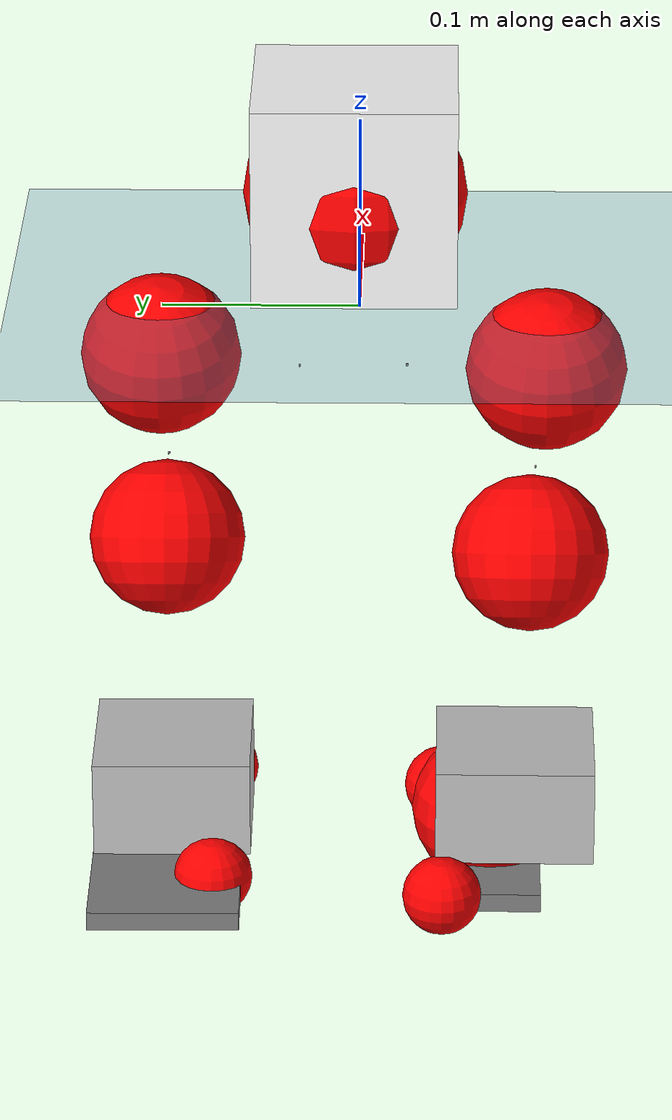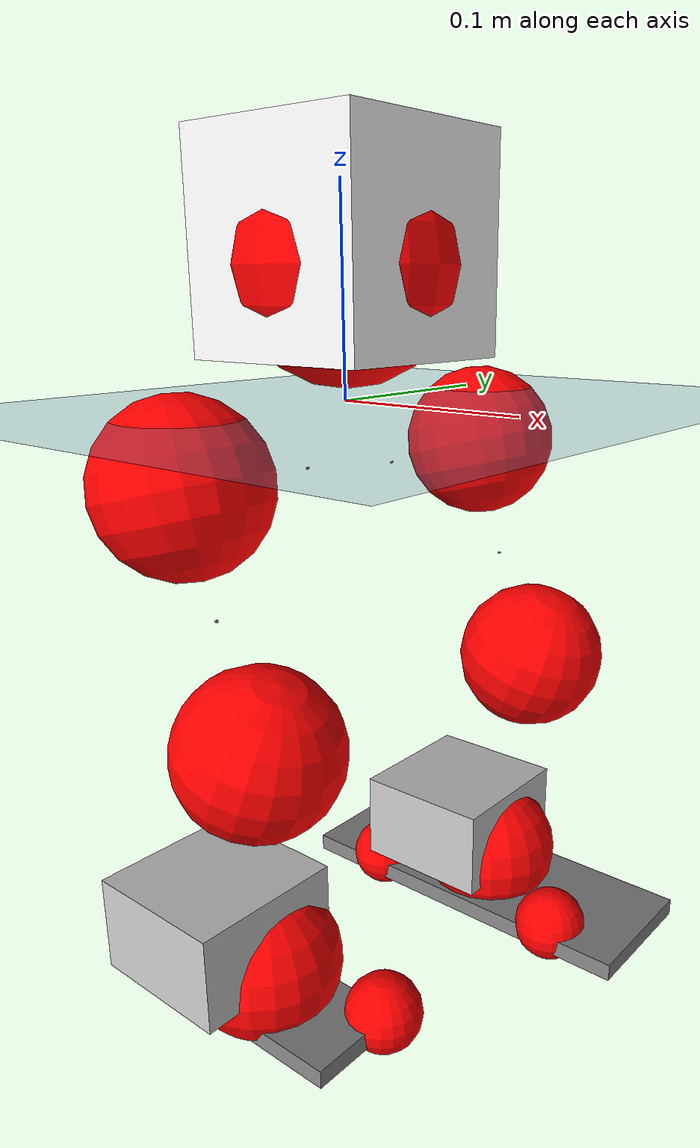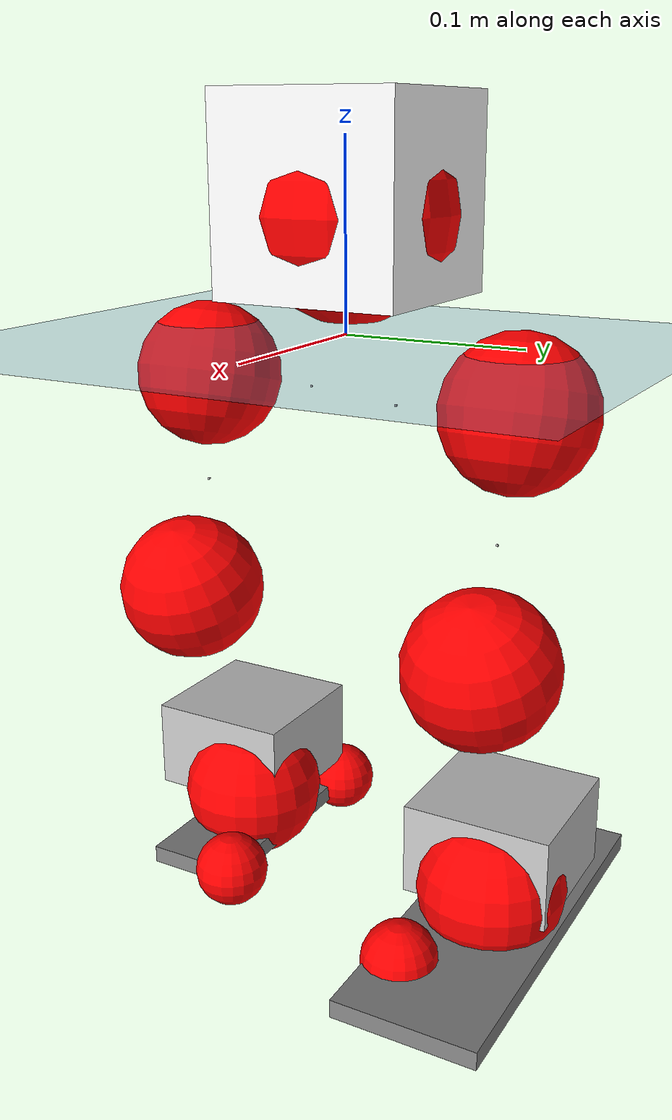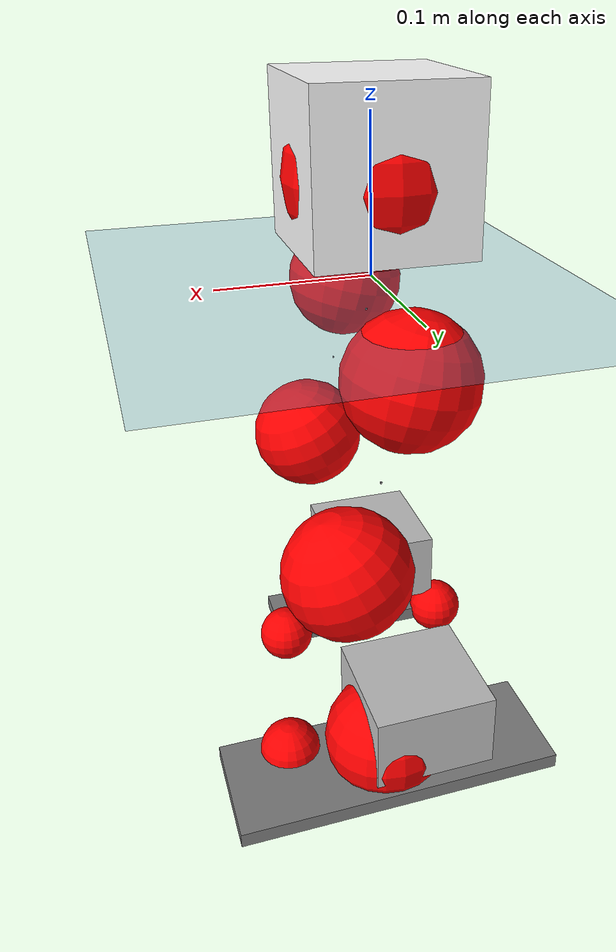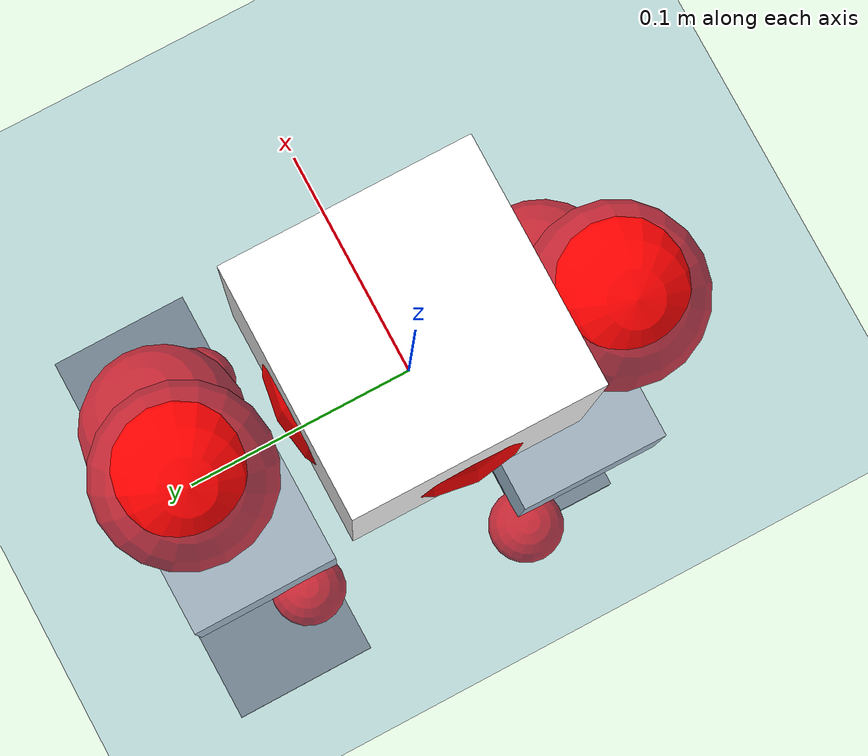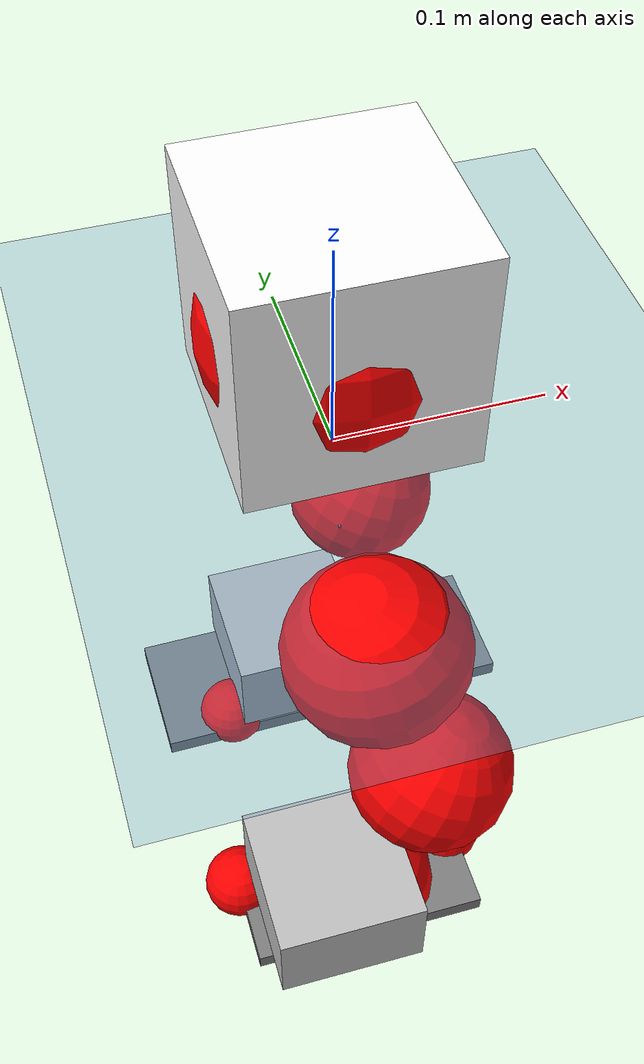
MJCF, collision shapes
<mujoco model="pi_12dof_release_v1">
  <compiler angle="radian" assetdir="assets" balanceinertia="true" inertiafromgeom="false"/>

  <option timestep="0.005" density="1.2" viscosity="2e-05"/>

  <size nkey="1"/>

  <visual>
    <quality shadowsize="8192"/>
    <map shadowclip="0.5"/>
  </visual>

  <default>
    <default class="/">
      <joint armature="0.01" damping="0.01" frictionloss="0.01"/>
      <geom contype="0" conaffinity="0" group="1" solref="-1000 -80"/>
      <site size="0.01 0.005 0.005" group="5"/>
      <general forcelimited="true" biastype="affine" gainprm="20" biasprm="0 -20 -0.5"/>
      <default class="foot">
        <geom size="0.0845 0.036 0.005" type="box" condim="6" group="4" priority="1" friction="0.9 0.2 0.2" solimp="0.015 1 0.005"/>
      </default>
      <default class="reward_collision_sphere">
        <geom group="5" rgba="1 0 0 1"/>
      </default>
    </default>
  </default>

  <asset>
    <texture type="skybox" colorspace="auto" name="//unnamed_texture_0" builtin="gradient" rgb1="0.95 0.95 0.95" rgb2="0.95 0.95 0.95" width="100" height="600"/>
    <texture type="2d" colorspace="auto" name="texplane" builtin="checker" rgb1="0.345 0.575 0.748" rgb2="0.345 0.575 0.748" markrgb="1 1 1" width="512" height="512"/>
    <material name="MatPlane" class="/" texture="texplane" texuniform="true" texrepeat="2 2" specular="0.9"/>
    <mesh name="baselink_1" class="/" file="baselink_1.STL"/>
    <mesh name="r_hip_pitch_link" class="/" file="r_hip_pitch_link.STL"/>
    <mesh name="r_hip_roll_link" class="/" file="r_hip_roll_link.STL"/>
    <mesh name="r_thigh_link" class="/" file="r_thigh_link.STL"/>
    <mesh name="r_calf_link" class="/" file="r_calf_link.STL"/>
    <mesh name="r_ankle_pitch_link" class="/" file="r_ankle_pitch_link.STL"/>
    <mesh name="r_ankle_roll_link" class="/" file="r_ankle_roll_link.STL"/>
    <mesh name="l_hip_pitch_link" class="/" file="l_hip_pitch_link.STL"/>
    <mesh name="l_hip_roll_link" class="/" file="l_hip_roll_link.STL"/>
    <mesh name="l_thigh_link" class="/" file="l_thigh_link.STL"/>
    <mesh name="l_calf_link" class="/" file="l_calf_link.STL"/>
    <mesh name="l_ankle_pitch_link" class="/" file="l_ankle_pitch_link.STL"/>
    <mesh name="l_ankle_roll_link" class="/" file="l_ankle_roll_link.STL"/>
  </asset>

  <worldbody>
    <geom name="floor" class="/" size="100 100 0.125" type="plane" group="0" material="MatPlane"/>
    <light name="toplight_shadow" class="/" pos="0 0 5" dir="0.0990148 0.0990148 -0.990148" type="directional" ambient="0.04 0.04 0.04" diffuse="0.55 0.55 0.55" specular="0.12 0.12 0.12"/>
    <light name="toplight_fill" class="/" pos="0 0 5" dir="0.0990148 0.0990148 -0.990148" type="directional" castshadow="false" ambient="0.04 0.04 0.04" diffuse="0.3 0.3 0.3" specular="0.08 0.08 0.08"/>
    <body name="trunk" pos="-0.000625703 0.00239494 -0.00123368" quat="0.999999 -0.000724406 -0.000821192 -0.000549549">
      <inertial pos="0.00366781 0.00670016 0.0336223" quat="0.697694 0.0139881 0.00793776 0.716215" mass="2.38782" diaginertia="0.00807631 0.0280372 0.0025065"/>
      <joint name="//unnamed_joint_0" type="free"/>
      <geom name="//unnamed_geom_1" class="/" type="mesh" density="0" rgba="1 1 1 1" mesh="baselink_1"/>
      <geom name="//unnamed_geom_2" class="/" size="0.0511008 0.0511008 0.0511008" pos="0 0 0.0719099" type="box" rgba="1 1 1 1"/>
      <geom name="//unnamed_geom_3" class="reward_collision_sphere" size="0.0562108" pos="0 0 0.0629212"/>
      <site name="imu" class="/" pos="-0.0109267 0.00899491 0.00894839" size="0.0102202"/>
      <camera name="track" class="/" pos="0 -2.47188 0" quat="0.707107 0.707107 0 0" mode="trackcom"/>
      <camera name="ego_camera" class="/" pos="0.0698424 0 0.161797" quat="-0.5 -0.5 0.5 0.5"/>
      <body name="r_hip_pitch_link" pos="-0.00303616 -0.0261561 -0.0290311" quat="0.992175 -0.000431077 -0.124857 -0.000110911">
        <inertial pos="0.00178907 -0.0641665 0.00362605" quat="-0.0464833 0.703214 -0.0592133 0.706982" mass="0.410427" diaginertia="7.60786e-05 0.00029078 4.89534e-05"/>
        <joint name="r_hip_pitch_joint" class="/" pos="0 0 0" axis="0.00826762 -0.999861 0.0144526" stiffness="0.00294928" range="-1.78559 1.22358" armature="0.00910694" damping="0" frictionloss="0.00705578"/>
        <geom name="//unnamed_geom_4" class="/" type="mesh" density="0" rgba="0.75294 0.75294 0.75294 1" mesh="r_hip_pitch_link"/>
        <geom name="//unnamed_geom_5" class="/" size="0.000511008 0.000511008 0.000511008" type="box" rgba="0.75294 0.75294 0.75294 1"/>
        <body name="r_hip_roll_link" pos="-0.00504691 -0.0705354 0.00130917" quat="0.999993 0.00176839 0.000194833 -0.00335232">
          <inertial pos="0.00191926 -0.00819386 -0.0585507" quat="0.705907 -0.0807693 -0.0835397 0.698708" mass="0.411014" diaginertia="0.000249986 0.000734418 7.54684e-05"/>
          <joint name="r_hip_roll_joint" class="/" pos="0 0 0" axis="-0.999992 -0.00165355 -0.00369734" stiffness="0.00718039" range="-0.115069 0.464006" armature="0.00805641" damping="0" frictionloss="0.00910783"/>
          <geom name="//unnamed_geom_6" class="/" type="mesh" density="0" rgba="0.75294 0.75294 0.75294 1" mesh="r_hip_roll_link"/>
          <geom name="//unnamed_geom_7" class="/" size="0.000511008 0.000511008 0.000511008" type="box" rgba="0.75294 0.75294 0.75294 1"/>
          <geom name="//unnamed_geom_8" class="reward_collision_sphere" size="0.0408806"/>
          <body name="r_thigh_link" pos="-0.00392232 0.0043856 -0.059991" quat="0.999998 -0.00142956 0.000766313 -0.000671517">
            <inertial pos="0.00569553 0.00357713 -0.038759" quat="0.735763 0.677231 -0.00245233 -0.00211091" mass="0.12472" diaginertia="8.90013e-05 0.000258589 3.38708e-05"/>
            <joint name="r_thigh_joint" class="/" pos="0 0 0" axis="0.0141826 -0.020914 -0.999681" stiffness="0.028933" range="-0.164243 0.730231" armature="0.00773541" damping="0.042189" frictionloss="0.00682629"/>
            <geom name="//unnamed_geom_9" class="/" type="mesh" density="0" rgba="0.75294 0.75294 0.75294 1" mesh="r_thigh_link"/>
            <geom name="//unnamed_geom_10" class="/" size="0.000511008 0.000511008 0.000511008" type="box" rgba="0.75294 0.75294 0.75294 1"/>
            <body name="r_calf_link" pos="0.00701734 0.00167182 -0.0622891" quat="0.947739 -0.000524248 0.319044 0.000693604">
              <inertial pos="-0.00348284 -0.000759994 -0.0622755" quat="0.999542 -0.0249197 0.017181 -0.000265039" mass="0.871257" diaginertia="0.00258042 0.0100809 0.000104614"/>
              <joint name="r_calf_joint" class="/" pos="0 0 0" axis="0.0131908 -0.999263 0.0360606" stiffness="0.0112289" range="-1.63252 0.603737" armature="0.00980591" damping="0.00230082" frictionloss="0.00725112"/>
              <geom name="//unnamed_geom_11" class="/" type="mesh" density="0" rgba="0.75294 0.75294 0.75294 1" mesh="r_calf_link"/>
              <geom name="//unnamed_geom_12" class="/" size="0.000511008 0.000511008 0.000511008" type="box" rgba="0.75294 0.75294 0.75294 1"/>
              <geom name="//unnamed_geom_13" class="reward_collision_sphere" size="0.0408806"/>
              <body name="r_ankle_pitch_link" pos="-0.000214813 0.0073222 -0.120997" quat="0.980065 -8.13955e-07 -0.198675 -1.09338e-05">
                <inertial pos="0.0035324 0.00648969 -0.00611076" quat="0.00111568 0.708618 -0.00548412 0.70557" mass="0.192844" diaginertia="0.000223956 0.000646956 7.1079e-05"/>
                <joint name="r_ankle_pitch_joint" class="/" pos="0 0 0" axis="0.000442508 -0.999946 -0.0103528" range="-1.24839 0.622043" armature="0.00805973" damping="0.0143985" frictionloss="0.00747453"/>
                <geom name="//unnamed_geom_14" class="/" type="mesh" density="0" rgba="0.75294 0.75294 0.75294 1" mesh="r_ankle_pitch_link"/>
                <geom name="//unnamed_geom_15" class="/" size="0.0398586 0.0408806 0.0255504" type="box" rgba="0.75294 0.75294 0.75294 1"/>
                <body name="r_ankle_roll_link" pos="0.0670243 0.0127016 -0.00572612" quat="1 0.000140788 -0.000126588 0.000831598">
                  <inertial pos="-0.020495 -0.00195307 -0.0111872" quat="0.559946 0.42994 0.434039 0.559663" mass="0.503152" diaginertia="0.000715006 0.00260428 0.000154084"/>
                  <joint name="r_ankle_roll_joint" class="/" pos="0 0 0" axis="-0.99911 0.00696081 -0.0416079" range="-0.301834 0.0722975" armature="0.00904381" damping="0" frictionloss="0.0108267"/>
                  <geom name="//unnamed_geom_16" class="/" type="mesh" density="0" rgba="0.75294 0.75294 0.75294 1" mesh="r_ankle_roll_link"/>
                  <geom name="//unnamed_geom_17" class="/" type="mesh" rgba="0.75294 0.75294 0.75294 1" mesh="r_ankle_roll_link"/>
                  <geom name="right_foot" class="foot" size="0.0659299 0.026261 0.00490725" pos="-0.0474928 0 -0.0395505"/>
                  <geom name="//unnamed_geom_19" class="reward_collision_sphere" size="0.0408806" pos="-0.0465616 0 -0.0179775"/>
                  <geom name="//unnamed_geom_20" class="reward_collision_sphere" size="0.0204403" pos="0.0139685 0.0247188 -0.035955"/>
                  <geom name="//unnamed_geom_21" class="reward_collision_sphere" size="0.0204403" pos="-0.111748 0.0247188 -0.035955"/>
                  <site name="right_foot" class="foot" pos="-0.0474928 0 -0.0395505" size="0.0102202"/>
                </body>
              </body>
            </body>
          </body>
        </body>
      </body>
      <body name="l_hip_pitch_link" pos="0.00366551 0.0285513 -0.0326571" quat="0.992106 0.000322853 -0.125397 0.000681868">
        <inertial pos="0.00322381 0.0648157 -0.00186457" quat="-0.0442413 0.702808 0.0360534 0.709087" mass="0.453214" diaginertia="8.7004e-05 0.000303436 5.77944e-05"/>
        <joint name="l_hip_pitch_joint" class="/" pos="0 0 0" axis="0.00291631 0.999992 -0.00284104" range="-1.1903 1.654" armature="0.00967786" damping="0.0249795" frictionloss="0.010146"/>
        <geom name="//unnamed_geom_22" class="/" type="mesh" density="0" rgba="0.75294 0.75294 0.75294 1" mesh="l_hip_pitch_link"/>
        <geom name="//unnamed_geom_23" class="/" size="0.000511008 0.000511008 0.000511008" type="box" rgba="0.75294 0.75294 0.75294 1"/>
        <body name="l_hip_roll_link" pos="0.00645552 0.0706218 0.00247457" quat="0.999995 -0.000780719 0.0026212 -0.00135668">
          <inertial pos="0.00429213 -0.00786563 -0.0542514" quat="0.691496 -0.0696591 -0.0914263 0.713177" mass="0.453613" diaginertia="0.000237985 0.000792418 7.08403e-05"/>
          <joint name="l_hip_roll_joint" class="/" pos="0 0 0" axis="-0.999897 0.0120137 -0.00781113" range="-0.518453 0.12727" armature="0.00664611" damping="0.00412907" frictionloss="0.0108288"/>
          <geom name="//unnamed_geom_24" class="/" type="mesh" density="0" rgba="0.75294 0.75294 0.75294 1" mesh="l_hip_roll_link"/>
          <geom name="//unnamed_geom_25" class="/" size="0.000511008 0.000511008 0.000511008" type="box" rgba="0.75294 0.75294 0.75294 1"/>
          <geom name="//unnamed_geom_26" class="reward_collision_sphere" size="0.0408806"/>
          <body name="l_thigh_link" pos="0.00111989 -0.00194629 -0.0650244" quat="1 -5.93936e-05 -0.00020621 0.000510839">
            <inertial pos="0.00210041 -0.00576355 -0.0466835" quat="0.675898 0.736933 -0.00114885 -0.00947549" mass="0.121676" diaginertia="9.3265e-05 0.000291707 3.65601e-05"/>
            <joint name="l_thigh_joint" class="/" pos="0 0 0" axis="-0.00280188 0.00465174 -0.999985" range="-0.584699 0.321458" armature="0.0108314" damping="0.0272723" frictionloss="0.0107658"/>
            <geom name="//unnamed_geom_27" class="/" type="mesh" density="0" rgba="0.75294 0.75294 0.75294 1" mesh="l_thigh_link"/>
            <geom name="//unnamed_geom_28" class="/" size="0.000511008 0.000511008 0.000511008" type="box" rgba="0.75294 0.75294 0.75294 1"/>
            <body name="l_calf_link" pos="0.00717715 0.00272479 -0.0612831" quat="0.947924 -0.00052461 0.318474 0.00385047">
              <inertial pos="0.00265207 0.0029704 -0.0671144" quat="0.99999 0.00314652 0.000128031 0.00332716" mass="0.881907" diaginertia="0.00248777 0.0103282 9.26827e-05"/>
              <joint name="l_calf_joint" class="/" pos="0 0 0" axis="-0.00513456 0.999973 0.00525658" stiffness="0.036534" range="-0.744494 1.63681" armature="0.0102266" damping="0.0103629" frictionloss="0.0109708"/>
              <geom name="//unnamed_geom_29" class="/" type="mesh" density="0" rgba="0.75294 0.75294 0.75294 1" mesh="l_calf_link"/>
              <geom name="//unnamed_geom_30" class="/" size="0.000511008 0.000511008 0.000511008" type="box" rgba="0.75294 0.75294 0.75294 1"/>
              <geom name="//unnamed_geom_31" class="reward_collision_sphere" size="0.0408806"/>
              <body name="l_ankle_pitch_link" pos="0.00256004 -0.00352134 -0.12606" quat="0.980087 7.97685e-05 -0.198568 4.05593e-05">
                <inertial pos="0.00368021 0.00231374 -0.0033096" quat="-0.00235104 0.711009 -0.00753239 0.703139" mass="0.195379" diaginertia="0.000214384 0.000643253 7.39761e-05"/>
                <joint name="l_ankle_pitch_joint" class="/" pos="0 0 0" axis="0.00880964 0.999942 -0.0062477" range="-0.568911 1.29218" armature="0.0127621" damping="0" frictionloss="0.0111676"/>
                <geom name="//unnamed_geom_32" class="/" type="mesh" density="0" rgba="0.75294 0.75294 0.75294 1" mesh="l_ankle_pitch_link"/>
                <geom name="//unnamed_geom_33" class="/" size="0.0398586 0.0408806 0.0255504" type="box" rgba="0.75294 0.75294 0.75294 1"/>
                <body name="l_ankle_roll_link" pos="0.0685118 0.00322339 -0.000236378" quat="1 -0.000177259 -0.000414565 -0.000634812">
                  <inertial pos="-0.0212567 0.00121787 -0.0151275" quat="0.562547 0.429384 0.434242 0.557318" mass="0.532375" diaginertia="0.00079952 0.00292927 0.000160265"/>
                  <joint name="l_ankle_roll_joint" class="/" pos="0 0 0" axis="-0.999988 -0.0016004 -0.00458242" range="-0.29411 0.164606" armature="0.00916276" damping="0.0368253" frictionloss="0.00985816"/>
                  <geom name="//unnamed_geom_34" class="/" type="mesh" density="0" rgba="0.75294 0.75294 0.75294 1" mesh="l_ankle_roll_link"/>
                  <geom name="//unnamed_geom_35" class="/" type="mesh" rgba="0.75294 0.75294 0.75294 1" mesh="l_ankle_roll_link"/>
                  <geom name="left_foot" class="foot" size="0.108242 0.0391854 0.00496827" pos="-0.0474928 0 -0.0395505"/>
                  <geom name="//unnamed_geom_37" class="reward_collision_sphere" size="0.0408806" pos="-0.0465616 0 -0.0179775"/>
                  <geom name="//unnamed_geom_38" class="reward_collision_sphere" size="0.0204403" pos="0.0139685 -0.0247188 -0.035955"/>
                  <geom name="//unnamed_geom_39" class="reward_collision_sphere" size="0.0204403" pos="-0.111748 -0.0247188 -0.035955"/>
                  <site name="left_foot" class="foot" pos="-0.0474928 0 -0.0395505" size="0.0102202"/>
                </body>
              </body>
            </body>
          </body>
        </body>
      </body>
    </body>
  </worldbody>

  <contact>
    <pair class="/" geom1="floor" geom2="right_foot" name="//unnamed_contact_1"/>
    <pair class="/" geom1="floor" geom2="left_foot" name="//unnamed_contact_0"/>
  </contact>

  <actuator>
    <general name="r_hip_pitch_joint" class="/" joint="r_hip_pitch_joint" forcerange="-21.2882 21.2882" gainprm="20.6427" biasprm="0 -20.6427 -0.543368"/>
    <general name="r_hip_roll_joint" class="/" joint="r_hip_roll_joint" forcerange="-15.5058 15.5058" gainprm="20.6427" biasprm="0 -20.6427 -0.543368"/>
    <general name="r_thigh_joint" class="/" joint="r_thigh_joint" forcerange="-21.1563 21.1563" gainprm="20.6427" biasprm="0 -20.6427 -0.543368"/>
    <general name="r_calf_joint" class="/" joint="r_calf_joint" forcerange="-22.9264 22.9264" gainprm="20.6427" biasprm="0 -20.6427 -0.543368"/>
    <general name="r_ankle_pitch_joint" class="/" joint="r_ankle_pitch_joint" forcerange="-21.7107 21.7107" gainprm="20.6427" biasprm="0 -20.6427 -0.543368"/>
    <general name="r_ankle_roll_joint" class="/" joint="r_ankle_roll_joint" forcerange="-18.5447 18.5447" gainprm="20.6427" biasprm="0 -20.6427 -0.543368"/>
    <general name="l_hip_pitch_joint" class="/" joint="l_hip_pitch_joint" forcerange="-21.3271 21.3271" gainprm="20.6427" biasprm="0 -20.6427 -0.543368"/>
    <general name="l_hip_roll_joint" class="/" joint="l_hip_roll_joint" forcerange="-21.8148 21.8148" gainprm="20.6427" biasprm="0 -20.6427 -0.543368"/>
    <general name="l_thigh_joint" class="/" joint="l_thigh_joint" forcerange="-22.6665 22.6665" gainprm="20.6427" biasprm="0 -20.6427 -0.543368"/>
    <general name="l_calf_joint" class="/" joint="l_calf_joint" forcerange="-22.051 22.051" gainprm="20.6427" biasprm="0 -20.6427 -0.543368"/>
    <general name="l_ankle_pitch_joint" class="/" joint="l_ankle_pitch_joint" forcerange="-20.2525 20.2525" gainprm="20.6427" biasprm="0 -20.6427 -0.543368"/>
    <general name="l_ankle_roll_joint" class="/" joint="l_ankle_roll_joint" forcerange="-23.9867 23.9867" gainprm="20.6427" biasprm="0 -20.6427 -0.543368"/>
  </actuator>

  <sensor>
    <gyro site="imu" name="imu_angular_velocity"/>
    <velocimeter site="imu" name="imu_linear_velocity"/>
    <framelinvel objtype="site" objname="left_foot" name="left_foot_global_linear_velocity"/>
    <framelinvel objtype="site" objname="right_foot" name="right_foot_global_linear_velocity"/>
  </sensor>

  <keyframe>
    <key name="home" qpos="0 0 0.291 1 0 0 0 0.4 0 0 -0.8 0.4 0 -0.4 0 0 0.8 -0.4 0"/>
  </keyframe>
</mujoco>
